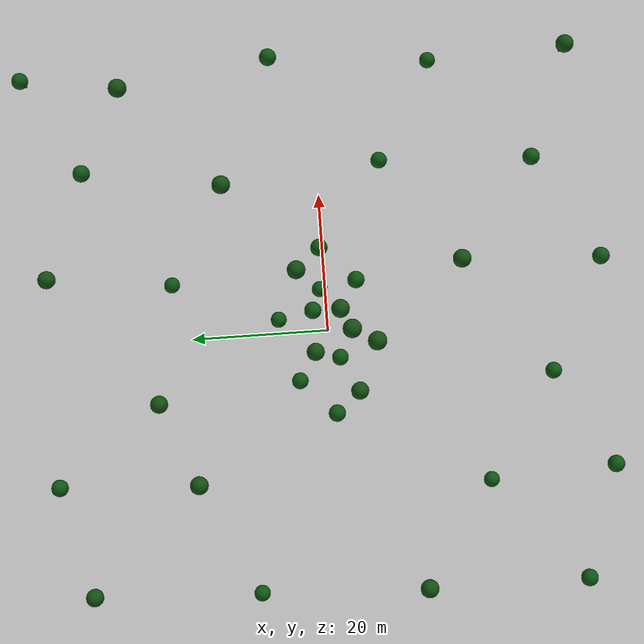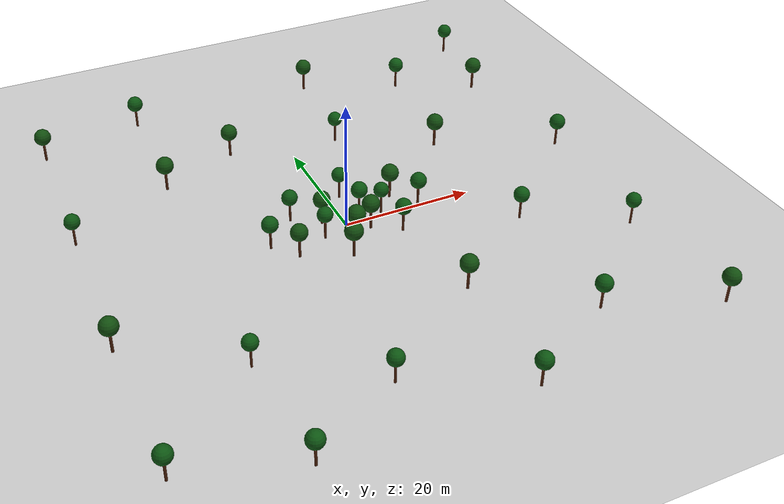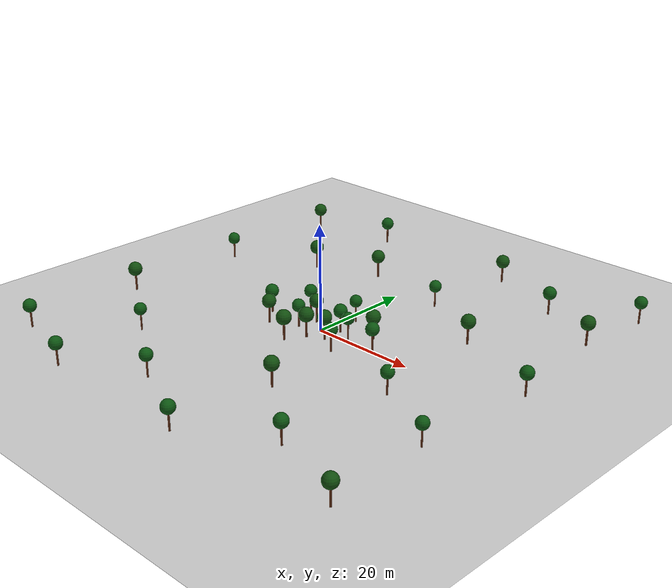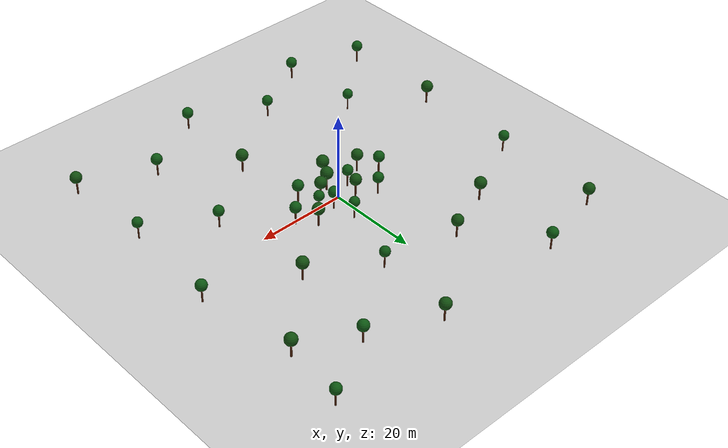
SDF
<sdf version='1.9'>
  <world name='default'>
    <physics type="ode">
      <max_step_size>0.004</max_step_size>
      <real_time_factor>1.0</real_time_factor>
      <real_time_update_rate>250</real_time_update_rate>
    </physics>
    <plugin name='gz::sim::systems::Physics' filename='gz-sim-physics-system'/>
    <plugin name='gz::sim::systems::UserCommands' filename='gz-sim-user-commands-system'/>
    <plugin name='gz::sim::systems::SceneBroadcaster' filename='gz-sim-scene-broadcaster-system'/>
    <plugin name='gz::sim::systems::Contact' filename='gz-sim-contact-system'/>
    <plugin name='gz::sim::systems::Imu' filename='gz-sim-imu-system'/>
    <plugin name='gz::sim::systems::AirPressure' filename='gz-sim-air-pressure-system'/>
    <plugin name='gz::sim::systems::Sensors' filename='gz-sim-sensors-system'>
      <render_engine>ogre2</render_engine>
    </plugin>
    <gui fullscreen='false'>
      <plugin name='3D View' filename='GzScene3D'>
        <gz-gui>
          <title>3D View</title>
          <property type='bool' key='showTitleBar'>0</property>
          <property type='string' key='state'>docked</property>
        </gz-gui>
        <engine>ogre2</engine>
        <scene>scene</scene>
        <ambient_light>0.5984631152222222 0.5984631152222222 0.5984631152222222</ambient_light>
        <background_color>0.8984631152222222 0.8984631152222222 0.8984631152222222</background_color>
        <camera_pose>-6 0 6 0 0.5 0</camera_pose>
      </plugin>
      <plugin name='World control' filename='WorldControl'>
        <gz-gui>
          <title>World control</title>
          <property type='bool' key='showTitleBar'>0</property>
          <property type='bool' key='resizable'>0</property>
          <property type='double' key='height'>72</property>
          <property type='double' key='width'>121</property>
          <property type='double' key='z'>1</property>
          <property type='string' key='state'>floating</property>
          <anchors target='3D View'>
            <line own='left' target='left'/>
            <line own='bottom' target='bottom'/>
          </anchors>
        </gz-gui>
        <play_pause>1</play_pause>
        <step>1</step>
        <start_paused>1</start_paused>
      </plugin>
      <plugin name='World stats' filename='WorldStats'>
        <gz-gui>
          <title>World stats</title>
          <property type='bool' key='showTitleBar'>0</property>
          <property type='bool' key='resizable'>0</property>
          <property type='double' key='height'>110</property>
          <property type='double' key='width'>290</property>
          <property type='double' key='z'>1</property>
          <property type='string' key='state'>floating</property>
          <anchors target='3D View'>
            <line own='right' target='right'/>
            <line own='bottom' target='bottom'/>
          </anchors>
        </gz-gui>
        <sim_time>1</sim_time>
        <real_time>1</real_time>
        <real_time_factor>1</real_time_factor>
        <iterations>1</iterations>
      </plugin>
      <plugin name='Entity tree' filename='EntityTree'/>
    </gui>
    <gravity>0 0 -9.8</gravity>
    <magnetic_field>6e-06 2.3e-05 -4.2e-05</magnetic_field>
    <atmosphere type='adiabatic'/>
    <scene>
      <grid>false</grid>
      <ambient>0.4 0.4 0.4 1</ambient>
      <background>0.7 0.7 0.7 1</background>
      <shadows>true</shadows>
    </scene>
    <model name='ground_plane'>
      <static>true</static>
      <link name='link'>
        <collision name='collision'>
          <geometry>
            <plane>
              <normal>0 0 1</normal>
              <size>1 1</size>
            </plane>
          </geometry>
          <surface>
            <friction>
              <ode/>
            </friction>
            <bounce/>
            <contact/>
          </surface>
        </collision>
        <visual name='visual'>
          <geometry>
            <plane>
              <normal>0 0 1</normal>
              <size>100 100</size>
            </plane>
          </geometry>
          <material>
            <ambient>0.8 0.8 0.8 1</ambient>
            <diffuse>0.8 0.8 0.8 1</diffuse>
            <specular>0.8 0.8 0.8 1</specular>
          </material>
        </visual>
        <pose>0 0 0 0 -0 0</pose>
        <inertial>
          <pose>0 0 0 0 -0 0</pose>
          <mass>1</mass>
          <inertia>
            <ixx>1</ixx>
            <ixy>0</ixy>
            <ixz>0</ixz>
            <iyy>1</iyy>
            <iyz>0</iyz>
            <izz>1</izz>
          </inertia>
        </inertial>
        <enable_wind>false</enable_wind>
      </link>
      <pose>0 0 0 0 -0 0</pose>
      <self_collide>false</self_collide>
    </model>
    <model name='tree_1'>
      <static>true</static>
      <pose>3 2 0 0 0 0</pose>
      <link name='tree'>
        <collision name='trunk_collision'>
          <pose>0 0 2 0 0 0</pose>
          <geometry>
            <cylinder><radius>0.18</radius><length>4</length></cylinder>
          </geometry>
        </collision>
        <visual name='trunk_visual'>
          <pose>0 0 2 0 0 0</pose>
          <geometry>
            <cylinder><radius>0.18</radius><length>4</length></cylinder>
          </geometry>
          <material>
            <ambient>0.22 0.09 0.03 1</ambient>
            <diffuse>0.32 0.14 0.05 1</diffuse>
          </material>
        </visual>
        <collision name='canopy_collision'>
          <pose>0 0 4.2 0 0 0</pose>
          <geometry>
            <sphere><radius>1.25</radius></sphere>
          </geometry>
        </collision>
        <visual name='canopy_visual'>
          <pose>0 0 4.2 0 0 0</pose>
          <geometry>
            <sphere><radius>1.25</radius></sphere>
          </geometry>
          <material>
            <ambient>0.03 0.20 0.04 1</ambient>
            <diffuse>0.05 0.34 0.07 1</diffuse>
          </material>
        </visual>
      </link>
    </model>
    <model name='tree_2'>
      <static>true</static>
      <pose>3 -2 0 0 0 0.35</pose>
      <link name='tree'>
        <collision name='trunk_collision'>
          <pose>0 0 2 0 0 0</pose>
          <geometry>
            <cylinder><radius>0.20</radius><length>4</length></cylinder>
          </geometry>
        </collision>
        <visual name='trunk_visual'>
          <pose>0 0 2 0 0 0</pose>
          <geometry>
            <cylinder><radius>0.20</radius><length>4</length></cylinder>
          </geometry>
          <material>
            <ambient>0.22 0.09 0.03 1</ambient>
            <diffuse>0.32 0.14 0.05 1</diffuse>
          </material>
        </visual>
        <collision name='canopy_collision'>
          <pose>0 0 4.3 0 0 0</pose>
          <geometry>
            <sphere><radius>1.35</radius></sphere>
          </geometry>
        </collision>
        <visual name='canopy_visual'>
          <pose>0 0 4.3 0 0 0</pose>
          <geometry>
            <sphere><radius>1.35</radius></sphere>
          </geometry>
          <material>
            <ambient>0.04 0.18 0.03 1</ambient>
            <diffuse>0.07 0.31 0.06 1</diffuse>
          </material>
        </visual>
      </link>
    </model>
    <model name='tree_3'>
      <static>true</static>
      <pose>6 0.8 0 0 0 -0.2</pose>
      <link name='tree'>
        <collision name='trunk_collision'>
          <pose>0 0 2 0 0 0</pose>
          <geometry>
            <cylinder><radius>0.16</radius><length>4</length></cylinder>
          </geometry>
        </collision>
        <visual name='trunk_visual'>
          <pose>0 0 2 0 0 0</pose>
          <geometry>
            <cylinder><radius>0.16</radius><length>4</length></cylinder>
          </geometry>
          <material>
            <ambient>0.22 0.09 0.03 1</ambient>
            <diffuse>0.32 0.14 0.05 1</diffuse>
          </material>
        </visual>
        <collision name='canopy_collision'>
          <pose>0 0 4.1 0 0 0</pose>
          <geometry>
            <sphere><radius>1.15</radius></sphere>
          </geometry>
        </collision>
        <visual name='canopy_visual'>
          <pose>0 0 4.1 0 0 0</pose>
          <geometry>
            <sphere><radius>1.15</radius></sphere>
          </geometry>
          <material>
            <ambient>0.03 0.20 0.04 1</ambient>
            <diffuse>0.05 0.34 0.07 1</diffuse>
          </material>
        </visual>
      </link>
    </model>
    <model name='tree_4'>
      <static>true</static>
      <pose>-3 2 0 0 0 0.15</pose>
      <link name='tree'>
        <collision name='trunk_collision'>
          <pose>0 0 2 0 0 0</pose>
          <geometry>
            <cylinder><radius>0.19</radius><length>4</length></cylinder>
          </geometry>
        </collision>
        <visual name='trunk_visual'>
          <pose>0 0 2 0 0 0</pose>
          <geometry>
            <cylinder><radius>0.19</radius><length>4</length></cylinder>
          </geometry>
          <material>
            <ambient>0.22 0.09 0.03 1</ambient>
            <diffuse>0.32 0.14 0.05 1</diffuse>
          </material>
        </visual>
        <collision name='canopy_collision'>
          <pose>0 0 4.25 0 0 0</pose>
          <geometry>
            <sphere><radius>1.3</radius></sphere>
          </geometry>
        </collision>
        <visual name='canopy_visual'>
          <pose>0 0 4.25 0 0 0</pose>
          <geometry>
            <sphere><radius>1.3</radius></sphere>
          </geometry>
          <material>
            <ambient>0.04 0.18 0.03 1</ambient>
            <diffuse>0.07 0.31 0.06 1</diffuse>
          </material>
        </visual>
      </link>
    </model>
    <model name='tree_5'>
      <static>true</static>
      <pose>-4 -1.5 0 0 0 -0.3</pose>
      <link name='tree'>
        <collision name='trunk_collision'>
          <pose>0 0 2 0 0 0</pose>
          <geometry>
            <cylinder><radius>0.17</radius><length>4</length></cylinder>
          </geometry>
        </collision>
        <visual name='trunk_visual'>
          <pose>0 0 2 0 0 0</pose>
          <geometry>
            <cylinder><radius>0.17</radius><length>4</length></cylinder>
          </geometry>
          <material>
            <ambient>0.22 0.09 0.03 1</ambient>
            <diffuse>0.32 0.14 0.05 1</diffuse>
          </material>
        </visual>
        <collision name='canopy_collision'>
          <pose>0 0 4.15 0 0 0</pose>
          <geometry>
            <sphere><radius>1.2</radius></sphere>
          </geometry>
        </collision>
        <visual name='canopy_visual'>
          <pose>0 0 4.15 0 0 0</pose>
          <geometry>
            <sphere><radius>1.2</radius></sphere>
          </geometry>
          <material>
            <ambient>0.03 0.20 0.04 1</ambient>
            <diffuse>0.05 0.34 0.07 1</diffuse>
          </material>
        </visual>
      </link>
    </model>
    <model name='tree_6'>
      <static>true</static>
      <pose>0 -3.5 0 0 0 0.25</pose>
      <link name='tree'>
        <collision name='trunk_collision'>
          <pose>0 0 2 0 0 0</pose>
          <geometry>
            <cylinder><radius>0.20</radius><length>4</length></cylinder>
          </geometry>
        </collision>
        <visual name='trunk_visual'>
          <pose>0 0 2 0 0 0</pose>
          <geometry>
            <cylinder><radius>0.20</radius><length>4</length></cylinder>
          </geometry>
          <material>
            <ambient>0.22 0.09 0.03 1</ambient>
            <diffuse>0.32 0.14 0.05 1</diffuse>
          </material>
        </visual>
        <collision name='canopy_collision'>
          <pose>0 0 4.35 0 0 0</pose>
          <geometry>
            <sphere><radius>1.4</radius></sphere>
          </geometry>
        </collision>
        <visual name='canopy_visual'>
          <pose>0 0 4.35 0 0 0</pose>
          <geometry>
            <sphere><radius>1.4</radius></sphere>
          </geometry>
          <material>
            <ambient>0.04 0.18 0.03 1</ambient>
            <diffuse>0.07 0.31 0.06 1</diffuse>
          </material>
        </visual>
      </link>
    </model>
    <model name='tree_7'>
      <static>true</static>
      <pose>7 -4.5 0 0 0 0</pose>
      <link name='tree'>
        <collision name='trunk_collision'>
          <pose>0 0 2 0 0 0</pose>
          <geometry>
            <cylinder><radius>0.18</radius><length>4</length></cylinder>
          </geometry>
        </collision>
        <visual name='trunk_visual'>
          <pose>0 0 2 0 0 0</pose>
          <geometry>
            <cylinder><radius>0.18</radius><length>4</length></cylinder>
          </geometry>
          <material>
            <ambient>0.22 0.09 0.03 1</ambient>
            <diffuse>0.32 0.14 0.05 1</diffuse>
          </material>
        </visual>
        <collision name='canopy_collision'>
          <pose>0 0 4.2 0 0 0</pose>
          <geometry><sphere><radius>1.25</radius></sphere></geometry>
        </collision>
        <visual name='canopy_visual'>
          <pose>0 0 4.2 0 0 0</pose>
          <geometry><sphere><radius>1.25</radius></sphere></geometry>
          <material>
            <ambient>0.03 0.20 0.04 1</ambient>
            <diffuse>0.05 0.34 0.07 1</diffuse>
          </material>
        </visual>
      </link>
    </model>
    <model name='tree_8'>
      <static>true</static>
      <pose>9 4 0 0 0 0</pose>
      <link name='tree'>
        <collision name='trunk_collision'>
          <pose>0 0 2 0 0 0</pose>
          <geometry>
            <cylinder><radius>0.20</radius><length>4</length></cylinder>
          </geometry>
        </collision>
        <visual name='trunk_visual'>
          <pose>0 0 2 0 0 0</pose>
          <geometry>
            <cylinder><radius>0.20</radius><length>4</length></cylinder>
          </geometry>
          <material>
            <ambient>0.22 0.09 0.03 1</ambient>
            <diffuse>0.32 0.14 0.05 1</diffuse>
          </material>
        </visual>
        <collision name='canopy_collision'>
          <pose>0 0 4.3 0 0 0</pose>
          <geometry><sphere><radius>1.35</radius></sphere></geometry>
        </collision>
        <visual name='canopy_visual'>
          <pose>0 0 4.3 0 0 0</pose>
          <geometry><sphere><radius>1.35</radius></sphere></geometry>
          <material>
            <ambient>0.04 0.18 0.03 1</ambient>
            <diffuse>0.07 0.31 0.06 1</diffuse>
          </material>
        </visual>
      </link>
    </model>
    <model name='tree_9'>
      <static>true</static>
      <pose>-7 4.5 0 0 0 0</pose>
      <link name='tree'>
        <collision name='trunk_collision'>
          <pose>0 0 2 0 0 0</pose>
          <geometry>
            <cylinder><radius>0.17</radius><length>4</length></cylinder>
          </geometry>
        </collision>
        <visual name='trunk_visual'>
          <pose>0 0 2 0 0 0</pose>
          <geometry>
            <cylinder><radius>0.17</radius><length>4</length></cylinder>
          </geometry>
          <material>
            <ambient>0.22 0.09 0.03 1</ambient>
            <diffuse>0.32 0.14 0.05 1</diffuse>
          </material>
        </visual>
        <collision name='canopy_collision'>
          <pose>0 0 4.15 0 0 0</pose>
          <geometry><sphere><radius>1.2</radius></sphere></geometry>
        </collision>
        <visual name='canopy_visual'>
          <pose>0 0 4.15 0 0 0</pose>
          <geometry><sphere><radius>1.2</radius></sphere></geometry>
          <material>
            <ambient>0.03 0.20 0.04 1</ambient>
            <diffuse>0.05 0.34 0.07 1</diffuse>
          </material>
        </visual>
      </link>
    </model>
    <model name='tree_10'>
      <static>true</static>
      <pose>-9 -4 0 0 0 0</pose>
      <link name='tree'>
        <collision name='trunk_collision'>
          <pose>0 0 2 0 0 0</pose>
          <geometry>
            <cylinder><radius>0.19</radius><length>4</length></cylinder>
          </geometry>
        </collision>
        <visual name='trunk_visual'>
          <pose>0 0 2 0 0 0</pose>
          <geometry>
            <cylinder><radius>0.19</radius><length>4</length></cylinder>
          </geometry>
          <material>
            <ambient>0.22 0.09 0.03 1</ambient>
            <diffuse>0.32 0.14 0.05 1</diffuse>
          </material>
        </visual>
        <collision name='canopy_collision'>
          <pose>0 0 4.25 0 0 0</pose>
          <geometry><sphere><radius>1.3</radius></sphere></geometry>
        </collision>
        <visual name='canopy_visual'>
          <pose>0 0 4.25 0 0 0</pose>
          <geometry><sphere><radius>1.3</radius></sphere></geometry>
          <material>
            <ambient>0.04 0.18 0.03 1</ambient>
            <diffuse>0.07 0.31 0.06 1</diffuse>
          </material>
        </visual>
      </link>
    </model>
    <model name='tree_11'>
      <static>true</static>
      <pose>2 7 0 0 0 0</pose>
      <link name='tree'>
        <collision name='trunk_collision'>
          <pose>0 0 2 0 0 0</pose>
          <geometry>
            <cylinder><radius>0.16</radius><length>4</length></cylinder>
          </geometry>
        </collision>
        <visual name='trunk_visual'>
          <pose>0 0 2 0 0 0</pose>
          <geometry>
            <cylinder><radius>0.16</radius><length>4</length></cylinder>
          </geometry>
          <material>
            <ambient>0.22 0.09 0.03 1</ambient>
            <diffuse>0.32 0.14 0.05 1</diffuse>
          </material>
        </visual>
        <collision name='canopy_collision'>
          <pose>0 0 4.1 0 0 0</pose>
          <geometry><sphere><radius>1.15</radius></sphere></geometry>
        </collision>
        <visual name='canopy_visual'>
          <pose>0 0 4.1 0 0 0</pose>
          <geometry><sphere><radius>1.15</radius></sphere></geometry>
          <material>
            <ambient>0.03 0.20 0.04 1</ambient>
            <diffuse>0.05 0.34 0.07 1</diffuse>
          </material>
        </visual>
      </link>
    </model>
    <model name='tree_12'>
      <static>true</static>
      <pose>-2 -7 0 0 0 0</pose>
      <link name='tree'>
        <collision name='trunk_collision'>
          <pose>0 0 2 0 0 0</pose>
          <geometry>
            <cylinder><radius>0.20</radius><length>4</length></cylinder>
          </geometry>
        </collision>
        <visual name='trunk_visual'>
          <pose>0 0 2 0 0 0</pose>
          <geometry>
            <cylinder><radius>0.20</radius><length>4</length></cylinder>
          </geometry>
          <material>
            <ambient>0.22 0.09 0.03 1</ambient>
            <diffuse>0.32 0.14 0.05 1</diffuse>
          </material>
        </visual>
        <collision name='canopy_collision'>
          <pose>0 0 4.35 0 0 0</pose>
          <geometry><sphere><radius>1.4</radius></sphere></geometry>
        </collision>
        <visual name='canopy_visual'>
          <pose>0 0 4.35 0 0 0</pose>
          <geometry><sphere><radius>1.4</radius></sphere></geometry>
          <material>
            <ambient>0.04 0.18 0.03 1</ambient>
            <diffuse>0.07 0.31 0.06 1</diffuse>
          </material>
        </visual>
      </link>
    </model>
    <model name='tree_13'>
      <static>true</static>
      <pose>12 0.5 0 0 0 0</pose>
      <link name='tree'>
        <collision name='trunk_collision'>
          <pose>0 0 2 0 0 0</pose>
          <geometry>
            <cylinder><radius>0.18</radius><length>4</length></cylinder>
          </geometry>
        </collision>
        <visual name='trunk_visual'>
          <pose>0 0 2 0 0 0</pose>
          <geometry>
            <cylinder><radius>0.18</radius><length>4</length></cylinder>
          </geometry>
          <material>
            <ambient>0.22 0.09 0.03 1</ambient>
            <diffuse>0.32 0.14 0.05 1</diffuse>
          </material>
        </visual>
        <collision name='canopy_collision'>
          <pose>0 0 4.2 0 0 0</pose>
          <geometry><sphere><radius>1.25</radius></sphere></geometry>
        </collision>
        <visual name='canopy_visual'>
          <pose>0 0 4.2 0 0 0</pose>
          <geometry><sphere><radius>1.25</radius></sphere></geometry>
          <material>
            <ambient>0.03 0.20 0.04 1</ambient>
            <diffuse>0.05 0.34 0.07 1</diffuse>
          </material>
        </visual>
      </link>
    </model>
    <model name='tree_14'>
      <static>true</static>
      <pose>-12 -0.5 0 0 0 0</pose>
      <link name='tree'>
        <collision name='trunk_collision'>
          <pose>0 0 2 0 0 0</pose>
          <geometry>
            <cylinder><radius>0.18</radius><length>4</length></cylinder>
          </geometry>
        </collision>
        <visual name='trunk_visual'>
          <pose>0 0 2 0 0 0</pose>
          <geometry>
            <cylinder><radius>0.18</radius><length>4</length></cylinder>
          </geometry>
          <material>
            <ambient>0.22 0.09 0.03 1</ambient>
            <diffuse>0.32 0.14 0.05 1</diffuse>
          </material>
        </visual>
        <collision name='canopy_collision'>
          <pose>0 0 4.2 0 0 0</pose>
          <geometry><sphere><radius>1.25</radius></sphere></geometry>
        </collision>
        <visual name='canopy_visual'>
          <pose>0 0 4.2 0 0 0</pose>
          <geometry><sphere><radius>1.25</radius></sphere></geometry>
          <material>
            <ambient>0.03 0.20 0.04 1</ambient>
            <diffuse>0.05 0.34 0.07 1</diffuse>
          </material>
        </visual>
      </link>
    </model>
    <!-- Additional low-cost tree instances spread over the outer ground plane.
         They share one static link while retaining separate collision shapes. -->
    <model name='outer_forest'>
      <static>true</static>
      <link name='trees'>
        <collision name='tree_15_trunk_collision'><pose>-38 -35 2 0 0 0</pose><geometry><cylinder><radius>0.18</radius><length>4</length></cylinder></geometry></collision>
        <visual name='tree_15_trunk_visual'><pose>-38 -35 2 0 0 0</pose><geometry><cylinder><radius>0.18</radius><length>4</length></cylinder></geometry><material><ambient>0.22 0.09 0.03 1</ambient><diffuse>0.32 0.14 0.05 1</diffuse></material></visual>
        <collision name='tree_15_canopy_collision'><pose>-38 -35 4.2 0 0 0</pose><geometry><sphere><radius>1.25</radius></sphere></geometry></collision>
        <visual name='tree_15_canopy_visual'><pose>-38 -35 4.2 0 0 0</pose><geometry><sphere><radius>1.25</radius></sphere></geometry><material><ambient>0.03 0.20 0.04 1</ambient><diffuse>0.05 0.34 0.07 1</diffuse></material></visual>
        <collision name='tree_16_trunk_collision'><pose>-38 -12 2 0 0 0</pose><geometry><cylinder><radius>0.20</radius><length>4</length></cylinder></geometry></collision>
        <visual name='tree_16_trunk_visual'><pose>-38 -12 2 0 0 0</pose><geometry><cylinder><radius>0.20</radius><length>4</length></cylinder></geometry><material><ambient>0.22 0.09 0.03 1</ambient><diffuse>0.32 0.14 0.05 1</diffuse></material></visual>
        <collision name='tree_16_canopy_collision'><pose>-38 -12 4.3 0 0 0</pose><geometry><sphere><radius>1.35</radius></sphere></geometry></collision>
        <visual name='tree_16_canopy_visual'><pose>-38 -12 4.3 0 0 0</pose><geometry><sphere><radius>1.35</radius></sphere></geometry><material><ambient>0.04 0.18 0.03 1</ambient><diffuse>0.07 0.31 0.06 1</diffuse></material></visual>
        <collision name='tree_17_trunk_collision'><pose>-37 12 2 0 0 0</pose><geometry><cylinder><radius>0.17</radius><length>4</length></cylinder></geometry></collision>
        <visual name='tree_17_trunk_visual'><pose>-37 12 2 0 0 0</pose><geometry><cylinder><radius>0.17</radius><length>4</length></cylinder></geometry><material><ambient>0.22 0.09 0.03 1</ambient><diffuse>0.32 0.14 0.05 1</diffuse></material></visual>
        <collision name='tree_17_canopy_collision'><pose>-37 12 4.1 0 0 0</pose><geometry><sphere><radius>1.18</radius></sphere></geometry></collision>
        <visual name='tree_17_canopy_visual'><pose>-37 12 4.1 0 0 0</pose><geometry><sphere><radius>1.18</radius></sphere></geometry><material><ambient>0.03 0.20 0.04 1</ambient><diffuse>0.05 0.34 0.07 1</diffuse></material></visual>
        <collision name='tree_18_trunk_collision'><pose>-36 36 2 0 0 0</pose><geometry><cylinder><radius>0.19</radius><length>4</length></cylinder></geometry></collision>
        <visual name='tree_18_trunk_visual'><pose>-36 36 2 0 0 0</pose><geometry><cylinder><radius>0.19</radius><length>4</length></cylinder></geometry><material><ambient>0.22 0.09 0.03 1</ambient><diffuse>0.32 0.14 0.05 1</diffuse></material></visual>
        <collision name='tree_18_canopy_collision'><pose>-36 36 4.25 0 0 0</pose><geometry><sphere><radius>1.30</radius></sphere></geometry></collision>
        <visual name='tree_18_canopy_visual'><pose>-36 36 4.25 0 0 0</pose><geometry><sphere><radius>1.30</radius></sphere></geometry><material><ambient>0.04 0.18 0.03 1</ambient><diffuse>0.07 0.31 0.06 1</diffuse></material></visual>
        <collision name='tree_19_trunk_collision'><pose>-22 -40 2 0 0 0</pose><geometry><cylinder><radius>0.18</radius><length>4</length></cylinder></geometry></collision>
        <visual name='tree_19_trunk_visual'><pose>-22 -40 2 0 0 0</pose><geometry><cylinder><radius>0.18</radius><length>4</length></cylinder></geometry><material><ambient>0.22 0.09 0.03 1</ambient><diffuse>0.32 0.14 0.05 1</diffuse></material></visual>
        <collision name='tree_19_canopy_collision'><pose>-22 -40 4.2 0 0 0</pose><geometry><sphere><radius>1.25</radius></sphere></geometry></collision>
        <visual name='tree_19_canopy_visual'><pose>-22 -40 4.2 0 0 0</pose><geometry><sphere><radius>1.25</radius></sphere></geometry><material><ambient>0.03 0.20 0.04 1</ambient><diffuse>0.05 0.34 0.07 1</diffuse></material></visual>
        <collision name='tree_20_trunk_collision'><pose>-23 -22 2 0 0 0</pose><geometry><cylinder><radius>0.16</radius><length>4</length></cylinder></geometry></collision>
        <visual name='tree_20_trunk_visual'><pose>-23 -22 2 0 0 0</pose><geometry><cylinder><radius>0.16</radius><length>4</length></cylinder></geometry><material><ambient>0.22 0.09 0.03 1</ambient><diffuse>0.32 0.14 0.05 1</diffuse></material></visual>
        <collision name='tree_20_canopy_collision'><pose>-23 -22 4.1 0 0 0</pose><geometry><sphere><radius>1.15</radius></sphere></geometry></collision>
        <visual name='tree_20_canopy_visual'><pose>-23 -22 4.1 0 0 0</pose><geometry><sphere><radius>1.15</radius></sphere></geometry><material><ambient>0.03 0.20 0.04 1</ambient><diffuse>0.05 0.34 0.07 1</diffuse></material></visual>
        <collision name='tree_21_trunk_collision'><pose>-21 20 2 0 0 0</pose><geometry><cylinder><radius>0.20</radius><length>4</length></cylinder></geometry></collision>
        <visual name='tree_21_trunk_visual'><pose>-21 20 2 0 0 0</pose><geometry><cylinder><radius>0.20</radius><length>4</length></cylinder></geometry><material><ambient>0.22 0.09 0.03 1</ambient><diffuse>0.32 0.14 0.05 1</diffuse></material></visual>
        <collision name='tree_21_canopy_collision'><pose>-21 20 4.35 0 0 0</pose><geometry><sphere><radius>1.35</radius></sphere></geometry></collision>
        <visual name='tree_21_canopy_visual'><pose>-21 20 4.35 0 0 0</pose><geometry><sphere><radius>1.35</radius></sphere></geometry><material><ambient>0.04 0.18 0.03 1</ambient><diffuse>0.07 0.31 0.06 1</diffuse></material></visual>
        <collision name='tree_22_trunk_collision'><pose>-20 40 2 0 0 0</pose><geometry><cylinder><radius>0.18</radius><length>4</length></cylinder></geometry></collision>
        <visual name='tree_22_trunk_visual'><pose>-20 40 2 0 0 0</pose><geometry><cylinder><radius>0.18</radius><length>4</length></cylinder></geometry><material><ambient>0.22 0.09 0.03 1</ambient><diffuse>0.32 0.14 0.05 1</diffuse></material></visual>
        <collision name='tree_22_canopy_collision'><pose>-20 40 4.2 0 0 0</pose><geometry><sphere><radius>1.25</radius></sphere></geometry></collision>
        <visual name='tree_22_canopy_visual'><pose>-20 40 4.2 0 0 0</pose><geometry><sphere><radius>1.25</radius></sphere></geometry><material><ambient>0.03 0.20 0.04 1</ambient><diffuse>0.05 0.34 0.07 1</diffuse></material></visual>
        <collision name='tree_23_trunk_collision'><pose>-8 -32 2 0 0 0</pose><geometry><cylinder><radius>0.17</radius><length>4</length></cylinder></geometry></collision>
        <visual name='tree_23_trunk_visual'><pose>-8 -32 2 0 0 0</pose><geometry><cylinder><radius>0.17</radius><length>4</length></cylinder></geometry><material><ambient>0.22 0.09 0.03 1</ambient><diffuse>0.32 0.14 0.05 1</diffuse></material></visual>
        <collision name='tree_23_canopy_collision'><pose>-8 -32 4.15 0 0 0</pose><geometry><sphere><radius>1.20</radius></sphere></geometry></collision>
        <visual name='tree_23_canopy_visual'><pose>-8 -32 4.15 0 0 0</pose><geometry><sphere><radius>1.20</radius></sphere></geometry><material><ambient>0.03 0.20 0.04 1</ambient><diffuse>0.05 0.34 0.07 1</diffuse></material></visual>
        <collision name='tree_24_trunk_collision'><pose>-9 25 2 0 0 0</pose><geometry><cylinder><radius>0.19</radius><length>4</length></cylinder></geometry></collision>
        <visual name='tree_24_trunk_visual'><pose>-9 25 2 0 0 0</pose><geometry><cylinder><radius>0.19</radius><length>4</length></cylinder></geometry><material><ambient>0.22 0.09 0.03 1</ambient><diffuse>0.32 0.14 0.05 1</diffuse></material></visual>
        <collision name='tree_24_canopy_collision'><pose>-9 25 4.25 0 0 0</pose><geometry><sphere><radius>1.30</radius></sphere></geometry></collision>
        <visual name='tree_24_canopy_visual'><pose>-9 25 4.25 0 0 0</pose><geometry><sphere><radius>1.30</radius></sphere></geometry><material><ambient>0.04 0.18 0.03 1</ambient><diffuse>0.07 0.31 0.06 1</diffuse></material></visual>
        <collision name='tree_25_trunk_collision'><pose>8 -40 2 0 0 0</pose><geometry><cylinder><radius>0.18</radius><length>4</length></cylinder></geometry></collision>
        <visual name='tree_25_trunk_visual'><pose>8 -40 2 0 0 0</pose><geometry><cylinder><radius>0.18</radius><length>4</length></cylinder></geometry><material><ambient>0.22 0.09 0.03 1</ambient><diffuse>0.32 0.14 0.05 1</diffuse></material></visual>
        <collision name='tree_25_canopy_collision'><pose>8 -40 4.2 0 0 0</pose><geometry><sphere><radius>1.25</radius></sphere></geometry></collision>
        <visual name='tree_25_canopy_visual'><pose>8 -40 4.2 0 0 0</pose><geometry><sphere><radius>1.25</radius></sphere></geometry><material><ambient>0.03 0.20 0.04 1</ambient><diffuse>0.05 0.34 0.07 1</diffuse></material></visual>
        <collision name='tree_26_trunk_collision'><pose>9 -20 2 0 0 0</pose><geometry><cylinder><radius>0.20</radius><length>4</length></cylinder></geometry></collision>
        <visual name='tree_26_trunk_visual'><pose>9 -20 2 0 0 0</pose><geometry><cylinder><radius>0.20</radius><length>4</length></cylinder></geometry><material><ambient>0.22 0.09 0.03 1</ambient><diffuse>0.32 0.14 0.05 1</diffuse></material></visual>
        <collision name='tree_26_canopy_collision'><pose>9 -20 4.3 0 0 0</pose><geometry><sphere><radius>1.35</radius></sphere></geometry></collision>
        <visual name='tree_26_canopy_visual'><pose>9 -20 4.3 0 0 0</pose><geometry><sphere><radius>1.35</radius></sphere></geometry><material><ambient>0.04 0.18 0.03 1</ambient><diffuse>0.07 0.31 0.06 1</diffuse></material></visual>
        <collision name='tree_27_trunk_collision'><pose>8 22 2 0 0 0</pose><geometry><cylinder><radius>0.16</radius><length>4</length></cylinder></geometry></collision>
        <visual name='tree_27_trunk_visual'><pose>8 22 2 0 0 0</pose><geometry><cylinder><radius>0.16</radius><length>4</length></cylinder></geometry><material><ambient>0.22 0.09 0.03 1</ambient><diffuse>0.32 0.14 0.05 1</diffuse></material></visual>
        <collision name='tree_27_canopy_collision'><pose>8 22 4.1 0 0 0</pose><geometry><sphere><radius>1.15</radius></sphere></geometry></collision>
        <visual name='tree_27_canopy_visual'><pose>8 22 4.1 0 0 0</pose><geometry><sphere><radius>1.15</radius></sphere></geometry><material><ambient>0.03 0.20 0.04 1</ambient><diffuse>0.05 0.34 0.07 1</diffuse></material></visual>
        <collision name='tree_28_trunk_collision'><pose>10 40 2 0 0 0</pose><geometry><cylinder><radius>0.19</radius><length>4</length></cylinder></geometry></collision>
        <visual name='tree_28_trunk_visual'><pose>10 40 2 0 0 0</pose><geometry><cylinder><radius>0.19</radius><length>4</length></cylinder></geometry><material><ambient>0.22 0.09 0.03 1</ambient><diffuse>0.32 0.14 0.05 1</diffuse></material></visual>
        <collision name='tree_28_canopy_collision'><pose>10 40 4.25 0 0 0</pose><geometry><sphere><radius>1.30</radius></sphere></geometry></collision>
        <visual name='tree_28_canopy_visual'><pose>10 40 4.25 0 0 0</pose><geometry><sphere><radius>1.30</radius></sphere></geometry><material><ambient>0.04 0.18 0.03 1</ambient><diffuse>0.07 0.31 0.06 1</diffuse></material></visual>
        <collision name='tree_29_trunk_collision'><pose>23 -31 2 0 0 0</pose><geometry><cylinder><radius>0.18</radius><length>4</length></cylinder></geometry></collision>
        <visual name='tree_29_trunk_visual'><pose>23 -31 2 0 0 0</pose><geometry><cylinder><radius>0.18</radius><length>4</length></cylinder></geometry><material><ambient>0.22 0.09 0.03 1</ambient><diffuse>0.32 0.14 0.05 1</diffuse></material></visual>
        <collision name='tree_29_canopy_collision'><pose>23 -31 4.2 0 0 0</pose><geometry><sphere><radius>1.25</radius></sphere></geometry></collision>
        <visual name='tree_29_canopy_visual'><pose>23 -31 4.2 0 0 0</pose><geometry><sphere><radius>1.25</radius></sphere></geometry><material><ambient>0.03 0.20 0.04 1</ambient><diffuse>0.05 0.34 0.07 1</diffuse></material></visual>
        <collision name='tree_30_trunk_collision'><pose>24 -9 2 0 0 0</pose><geometry><cylinder><radius>0.17</radius><length>4</length></cylinder></geometry></collision>
        <visual name='tree_30_trunk_visual'><pose>24 -9 2 0 0 0</pose><geometry><cylinder><radius>0.17</radius><length>4</length></cylinder></geometry><material><ambient>0.22 0.09 0.03 1</ambient><diffuse>0.32 0.14 0.05 1</diffuse></material></visual>
        <collision name='tree_30_canopy_collision'><pose>24 -9 4.15 0 0 0</pose><geometry><sphere><radius>1.20</radius></sphere></geometry></collision>
        <visual name='tree_30_canopy_visual'><pose>24 -9 4.15 0 0 0</pose><geometry><sphere><radius>1.20</radius></sphere></geometry><material><ambient>0.03 0.20 0.04 1</ambient><diffuse>0.05 0.34 0.07 1</diffuse></material></visual>
        <collision name='tree_31_trunk_collision'><pose>22 14 2 0 0 0</pose><geometry><cylinder><radius>0.20</radius><length>4</length></cylinder></geometry></collision>
        <visual name='tree_31_trunk_visual'><pose>22 14 2 0 0 0</pose><geometry><cylinder><radius>0.20</radius><length>4</length></cylinder></geometry><material><ambient>0.22 0.09 0.03 1</ambient><diffuse>0.32 0.14 0.05 1</diffuse></material></visual>
        <collision name='tree_31_canopy_collision'><pose>22 14 4.35 0 0 0</pose><geometry><sphere><radius>1.35</radius></sphere></geometry></collision>
        <visual name='tree_31_canopy_visual'><pose>22 14 4.35 0 0 0</pose><geometry><sphere><radius>1.35</radius></sphere></geometry><material><ambient>0.04 0.18 0.03 1</ambient><diffuse>0.07 0.31 0.06 1</diffuse></material></visual>
        <collision name='tree_32_trunk_collision'><pose>25 34 2 0 0 0</pose><geometry><cylinder><radius>0.18</radius><length>4</length></cylinder></geometry></collision>
        <visual name='tree_32_trunk_visual'><pose>25 34 2 0 0 0</pose><geometry><cylinder><radius>0.18</radius><length>4</length></cylinder></geometry><material><ambient>0.22 0.09 0.03 1</ambient><diffuse>0.32 0.14 0.05 1</diffuse></material></visual>
        <collision name='tree_32_canopy_collision'><pose>25 34 4.2 0 0 0</pose><geometry><sphere><radius>1.25</radius></sphere></geometry></collision>
        <visual name='tree_32_canopy_visual'><pose>25 34 4.2 0 0 0</pose><geometry><sphere><radius>1.25</radius></sphere></geometry><material><ambient>0.03 0.20 0.04 1</ambient><diffuse>0.05 0.34 0.07 1</diffuse></material></visual>
        <collision name='tree_33_trunk_collision'><pose>39 -37 2 0 0 0</pose><geometry><cylinder><radius>0.19</radius><length>4</length></cylinder></geometry></collision>
        <visual name='tree_33_trunk_visual'><pose>39 -37 2 0 0 0</pose><geometry><cylinder><radius>0.19</radius><length>4</length></cylinder></geometry><material><ambient>0.22 0.09 0.03 1</ambient><diffuse>0.32 0.14 0.05 1</diffuse></material></visual>
        <collision name='tree_33_canopy_collision'><pose>39 -37 4.25 0 0 0</pose><geometry><sphere><radius>1.30</radius></sphere></geometry></collision>
        <visual name='tree_33_canopy_visual'><pose>39 -37 4.25 0 0 0</pose><geometry><sphere><radius>1.30</radius></sphere></geometry><material><ambient>0.04 0.18 0.03 1</ambient><diffuse>0.07 0.31 0.06 1</diffuse></material></visual>
        <collision name='tree_34_trunk_collision'><pose>38 -17 2 0 0 0</pose><geometry><cylinder><radius>0.16</radius><length>4</length></cylinder></geometry></collision>
        <visual name='tree_34_trunk_visual'><pose>38 -17 2 0 0 0</pose><geometry><cylinder><radius>0.16</radius><length>4</length></cylinder></geometry><material><ambient>0.22 0.09 0.03 1</ambient><diffuse>0.32 0.14 0.05 1</diffuse></material></visual>
        <collision name='tree_34_canopy_collision'><pose>38 -17 4.1 0 0 0</pose><geometry><sphere><radius>1.15</radius></sphere></geometry></collision>
        <visual name='tree_34_canopy_visual'><pose>38 -17 4.1 0 0 0</pose><geometry><sphere><radius>1.15</radius></sphere></geometry><material><ambient>0.03 0.20 0.04 1</ambient><diffuse>0.05 0.34 0.07 1</diffuse></material></visual>
        <collision name='tree_35_trunk_collision'><pose>40 6 2 0 0 0</pose><geometry><cylinder><radius>0.18</radius><length>4</length></cylinder></geometry></collision>
        <visual name='tree_35_trunk_visual'><pose>40 6 2 0 0 0</pose><geometry><cylinder><radius>0.18</radius><length>4</length></cylinder></geometry><material><ambient>0.22 0.09 0.03 1</ambient><diffuse>0.32 0.14 0.05 1</diffuse></material></visual>
        <collision name='tree_35_canopy_collision'><pose>40 6 4.2 0 0 0</pose><geometry><sphere><radius>1.25</radius></sphere></geometry></collision>
        <visual name='tree_35_canopy_visual'><pose>40 6 4.2 0 0 0</pose><geometry><sphere><radius>1.25</radius></sphere></geometry><material><ambient>0.03 0.20 0.04 1</ambient><diffuse>0.05 0.34 0.07 1</diffuse></material></visual>
        <collision name='tree_36_trunk_collision'><pose>37 28 2 0 0 0</pose><geometry><cylinder><radius>0.20</radius><length>4</length></cylinder></geometry></collision>
        <visual name='tree_36_trunk_visual'><pose>37 28 2 0 0 0</pose><geometry><cylinder><radius>0.20</radius><length>4</length></cylinder></geometry><material><ambient>0.22 0.09 0.03 1</ambient><diffuse>0.32 0.14 0.05 1</diffuse></material></visual>
        <collision name='tree_36_canopy_collision'><pose>37 28 4.3 0 0 0</pose><geometry><sphere><radius>1.35</radius></sphere></geometry></collision>
        <visual name='tree_36_canopy_visual'><pose>37 28 4.3 0 0 0</pose><geometry><sphere><radius>1.35</radius></sphere></geometry><material><ambient>0.04 0.18 0.03 1</ambient><diffuse>0.07 0.31 0.06 1</diffuse></material></visual>
        <collision name='tree_37_trunk_collision'><pose>39 42 2 0 0 0</pose><geometry><cylinder><radius>0.17</radius><length>4</length></cylinder></geometry></collision>
        <visual name='tree_37_trunk_visual'><pose>39 42 2 0 0 0</pose><geometry><cylinder><radius>0.17</radius><length>4</length></cylinder></geometry><material><ambient>0.22 0.09 0.03 1</ambient><diffuse>0.32 0.14 0.05 1</diffuse></material></visual>
        <collision name='tree_37_canopy_collision'><pose>39 42 4.15 0 0 0</pose><geometry><sphere><radius>1.20</radius></sphere></geometry></collision>
        <visual name='tree_37_canopy_visual'><pose>39 42 4.15 0 0 0</pose><geometry><sphere><radius>1.20</radius></sphere></geometry><material><ambient>0.03 0.20 0.04 1</ambient><diffuse>0.05 0.34 0.07 1</diffuse></material></visual>
      </link>
    </model>
    <light name='sunUTC' type='directional'>
      <pose>0 0 500 0 -0 0</pose>
      <cast_shadows>true</cast_shadows>
      <intensity>1</intensity>
      <direction>0.001 0.625 -0.78</direction>
      <diffuse>0.904 0.904 0.904 1</diffuse>
      <specular>0.271 0.271 0.271 1</specular>
      <attenuation>
        <range>2000</range>
        <linear>0</linear>
        <constant>1</constant>
        <quadratic>0</quadratic>
      </attenuation>
      <spot>
        <inner_angle>0</inner_angle>
        <outer_angle>0</outer_angle>
        <falloff>0</falloff>
      </spot>
    </light>
  </world>
</sdf>
